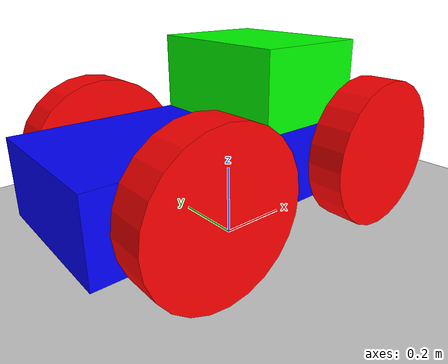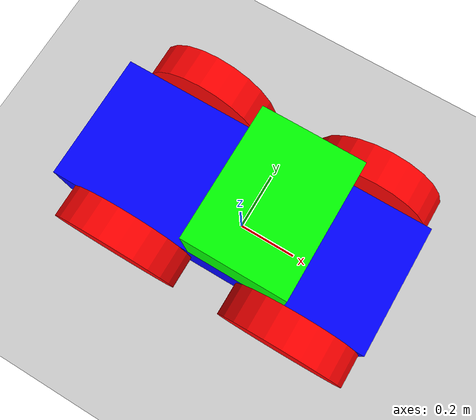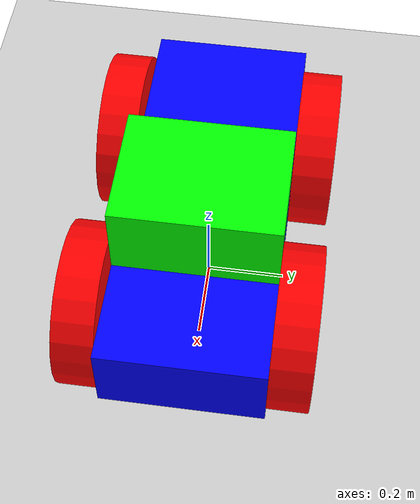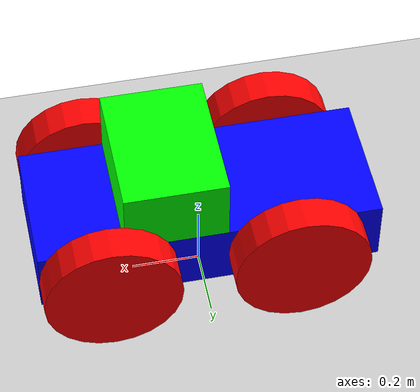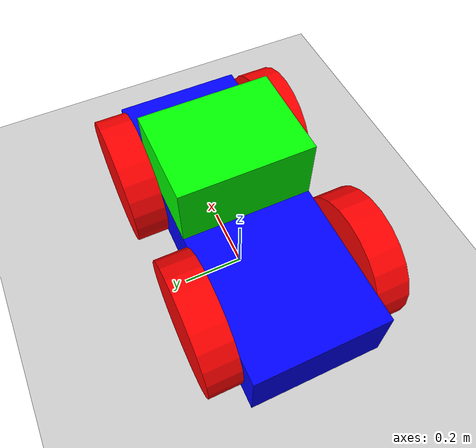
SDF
<?xml version="1.0" ?>
<sdf version="1.9">
    <world name="my_world">
        <include>
            <name>base_link</name>
            <uri>file://description/robot.sdf</uri>
        </include>
        <physics name="1ms" type="ignored">
            <max_step_size>0.001</max_step_size>
            <real_time_factor>1.0</real_time_factor>
        </physics>
        <plugin
            filename="libignition-gazebo-physics-system.so"
            name="ignition::gazebo::systems::Physics">
        </plugin>
        <plugin
            filename="libignition-gazebo-user-commands-system.so"
            name="ignition::gazebo::systems::UserCommands">
        </plugin>
        <plugin
            filename="libignition-gazebo-scene-broadcaster-system.so"
            name="ignition::gazebo::systems::SceneBroadcaster">
        </plugin>
        <plugin
            filename="libignition-gazebo-sensors-system.so"
            name="ignition::gazebo::systems::Sensors">
            <render_engine>ogre2</render_engine>
        </plugin>

        <light type="directional" name="sun">
            <cast_shadows>true</cast_shadows>
            <pose>0 0 10 0 0 0</pose>
            <diffuse>0.8 0.8 0.8 1</diffuse>
            <specular>0.2 0.2 0.2 1</specular>
            <attenuation>
                <range>1000</range>
                <constant>0.9</constant>
                <linear>0.01</linear>
                <quadratic>0.001</quadratic>
            </attenuation>
            <direction>-0.5 0.1 -0.9</direction>
        </light>

        <model name="ground_plane">
            <static>true</static>
            <link name="link">
                <collision name="collision">
                <geometry>
                    <plane>
                    <normal>0 0 1</normal>
                    </plane>
                </geometry>
                </collision>
                <visual name="visual">
                <geometry>
                    <plane>
                    <normal>0 0 1</normal>
                    <size>100 100</size>
                    </plane>
                </geometry>
                <material>
                    <ambient>0.8 0.8 0.8 1</ambient>
                    <diffuse>0.8 0.8 0.8 1</diffuse>
                    <specular>0.8 0.8 0.8 1</specular>
                </material>
                </visual>
            </link>
            <!-- Moving Forward-->
            <plugin filename="libignition-gazebo-triggered-publisher-system.so"
            name="ignition::gazebo::systems::TriggeredPublisher">
                <input type="ignition.msgs.Int32" topic="/keyboard/keypress">
                    <match field="data">16777235</match>
                </input>
                <output type="ignition.msgs.Twist" topic="/cmd_vel">
                    linear: {x: 0.5}, angular: {z: 0.0}
                </output>
            </plugin>

            <!-- Stop-->
            <plugin filename="libignition-gazebo-triggered-publisher-system.so"
            name="ignition::gazebo::systems::TriggeredPublisher">
                <input type="ignition.msgs.Int32" topic="/keyboard/keypress">
                    <match field="data">16777216</match>
                </input>
                <output type="ignition.msgs.Twist" topic="/cmd_vel">
                    linear: {x: 0.0}, angular: {z: 0.0}
                </output>
            </plugin>

            <!-- Left -->
            <plugin filename="libignition-gazebo-triggered-publisher-system.so"
            name="ignition::gazebo::systems::TriggeredPublisher">
                <input type="ignition.msgs.Int32" topic="/keyboard/keypress">
                    <match field="data">16777234</match>
                </input>
                <output type="ignition.msgs.Twist" topic="/cmd_vel">
                    linear: {x: 0.0}, angular: {z: 0.5}
                </output>
            </plugin>

            <!-- Right -->
            <plugin filename="libignition-gazebo-triggered-publisher-system.so"
            name="ignition::gazebo::systems::TriggeredPublisher">
                <input type="ignition.msgs.Int32" topic="/keyboard/keypress">
                    <match field="data">16777236</match>
                </input>
                <output type="ignition.msgs.Twist" topic="/cmd_vel">
                    linear: {x: 0.0}, angular: {z: -0.5}
                </output>
            </plugin>

            <!-- back -->
            <plugin filename="libignition-gazebo-triggered-publisher-system.so"
            name="ignition::gazebo::systems::TriggeredPublisher">
                <input type="ignition.msgs.Int32" topic="/keyboard/keypress">
                    <match field="data">16777237</match>
                </input>
                <output type="ignition.msgs.Twist" topic="/cmd_vel">
                    linear: {x: -0.5}, angular: {z: 0.0}
                </output>
            </plugin>
        </model>
    </world>
</sdf>

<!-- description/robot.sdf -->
<sdf version='1.9'>
  <model name='robot'>
    <link name='base_link'>
      <inertial>
        <pose>0.05 0 0.3 0 0 0</pose>
        <mass>1</mass>
        <inertia>
          <ixx>0.026666666666666661</ixx>
          <ixy>0</ixy>
          <ixz>-0.005000000000000001</ixz>
          <iyy>0.061249999999999999</iyy>
          <iyz>0</iyz>
          <izz>0.061249999999999999</izz>
        </inertia>
      </inertial>
      <collision name='base_link_fixed_joint_lump__chassis_collision'>
        <pose>0 0 0.2 0 0 0</pose>
        <geometry>
          <box>
            <size>1 0.4 0.2</size>
          </box>
        </geometry>
      </collision>
      <collision name='base_link_fixed_joint_lump__robo_hub_collision_1'>
        <pose>0.1 0 0.4 0 0 0</pose>
        <geometry>
          <box>
            <size>0.3 0.4 0.2</size>
          </box>
        </geometry>
      </collision>
      <visual name='base_link_fixed_joint_lump__chassis_visual'>
        <pose>0 0 0.2 0 0 0</pose>
        <geometry>
          <box>
            <size>1 0.4 0.2</size>
          </box>
        </geometry>
        <material>
          <diffuse>0 0 1 1</diffuse>
          <ambient>0 0 1 1</ambient>
        </material>
      </visual>
      <visual name='base_link_fixed_joint_lump__camera_link_visual_1'>
        <pose>0.305 0 0.08 0 0 0</pose>
        <geometry>
          <box>
            <size>0.01 0.03 0.03</size>
          </box>
        </geometry>
        <material>
          <diffuse>1 0 0 1</diffuse>
          <ambient>1 0 0 1</ambient>
        </material>
      </visual>
      <visual name='base_link_fixed_joint_lump__robo_hub_visual_2'>
        <pose>0.1 0 0.4 0 0 0</pose>
        <geometry>
          <box>
            <size>0.3 0.4 0.2</size>
          </box>
        </geometry>
        <material>
          <diffuse>0 1 0 1</diffuse>
          <ambient>0 1 0 1</ambient>
        </material>
      </visual>
      <sensor name='camera' type='camera'>
        <camera>
          <horizontal_fov>1.089</horizontal_fov>
          <image>
            <format>R8G8B8</format>
            <width>640</width>
            <height>480</height>
          </image>
          <clip>
            <near>0.050000000000000003</near>
            <far>8</far>
          </clip>
        </camera>
        <always_on>true</always_on>
        <update_rate>30</update_rate>
        <visualize>true</visualize>
        <topic>camera/image_raw</topic>
        <pose>0.305 0 0.08 0 -0 0</pose>
      </sensor>
    </link>
    <joint name='left_wheel_joint' type='revolute'>
      <pose relative_to='base_link'>0.3 0.25 0.2 -1.570796326794896 0 0</pose>
      <parent>base_link</parent>
      <child>left_wheel</child>
      <axis>
        <xyz>0 0 1</xyz>
        <limit>
          <lower>-10000000000000000</lower>
          <upper>10000000000000000</upper>
        </limit>
        <dynamics>
          <spring_reference>0</spring_reference>
          <spring_stiffness>0</spring_stiffness>
        </dynamics>
      </axis>
    </joint>
    <link name='left_wheel'>
      <pose relative_to='left_wheel_joint'>0 0 0 0 0 0</pose>
      <inertial>
        <pose>0 0 0 0 0 0</pose>
        <mass>0.10000000000000001</mass>
        <inertia>
          <ixx>0.0010833333333333339</ixx>
          <ixy>0</ixy>
          <ixz>0</ixz>
          <iyy>0.0010833333333333339</iyy>
          <iyz>0</iyz>
          <izz>0.002</izz>
        </inertia>
      </inertial>
      <collision name='left_wheel_collision'>
        <pose>0 0 0 0 0 0</pose>
        <geometry>
          <cylinder>
            <length>0.10000000000000001</length>
            <radius>0.20000000000000001</radius>
          </cylinder>
        </geometry>
      </collision>
      <visual name='left_wheel_visual'>
        <pose>0 0 0 0 0 0</pose>
        <geometry>
          <cylinder>
            <length>0.10000000000000001</length>
            <radius>0.20000000000000001</radius>
          </cylinder>
        </geometry>
        <material>
          <diffuse>1 0 0 1</diffuse>
          <ambient>1 0 0 1</ambient>
        </material>
      </visual>
    </link>
    <joint name='left_wheel_joint1' type='revolute'>
      <pose relative_to='base_link'>-0.25 0.25 0.2 -1.570796326794896 0 0</pose>
      <parent>base_link</parent>
      <child>left_wheel1</child>
      <axis>
        <xyz>0 0 1</xyz>
        <limit>
          <lower>-10000000000000000</lower>
          <upper>10000000000000000</upper>
        </limit>
        <dynamics>
          <spring_reference>0</spring_reference>
          <spring_stiffness>0</spring_stiffness>
        </dynamics>
      </axis>
    </joint>
    <link name='left_wheel1'>
      <pose relative_to='left_wheel_joint1'>0 0 0 0 0 0</pose>
      <inertial>
        <pose>0 0 0 0 0 0</pose>
        <mass>0.10000000000000001</mass>
        <inertia>
          <ixx>0.0010833333333333339</ixx>
          <ixy>0</ixy>
          <ixz>0</ixz>
          <iyy>0.0010833333333333339</iyy>
          <iyz>0</iyz>
          <izz>0.002</izz>
        </inertia>
      </inertial>
      <collision name='left_wheel1_collision'>
        <pose>0 0 0 0 0 0</pose>
        <geometry>
          <cylinder>
            <length>0.10000000000000001</length>
            <radius>0.20000000000000001</radius>
          </cylinder>
        </geometry>
      </collision>
      <visual name='left_wheel1_visual'>
        <pose>0 0 0 0 0 0</pose>
        <geometry>
          <cylinder>
            <length>0.10000000000000001</length>
            <radius>0.20000000000000001</radius>
          </cylinder>
        </geometry>
        <material>
          <diffuse>1 0 0 1</diffuse>
          <ambient>1 0 0 1</ambient>
        </material>
      </visual>
    </link>
    <joint name='right_wheel_joint' type='revolute'>
      <pose relative_to='base_link'>0.3 -0.25 0.2 1.570796326794896 0 0</pose>
      <parent>base_link</parent>
      <child>right_wheel</child>
      <axis>
        <xyz>0 0 -1</xyz>
        <limit>
          <lower>-10000000000000000</lower>
          <upper>10000000000000000</upper>
        </limit>
        <dynamics>
          <spring_reference>0</spring_reference>
          <spring_stiffness>0</spring_stiffness>
        </dynamics>
      </axis>
    </joint>
    <link name='right_wheel'>
      <pose relative_to='right_wheel_joint'>0 0 0 0 0 0</pose>
      <inertial>
        <pose>0 0 0 0 0 0</pose>
        <mass>0.10000000000000001</mass>
        <inertia>
          <ixx>0.0010833333333333339</ixx>
          <ixy>0</ixy>
          <ixz>0</ixz>
          <iyy>0.0010833333333333339</iyy>
          <iyz>0</iyz>
          <izz>0.002</izz>
        </inertia>
      </inertial>
      <collision name='right_wheel_collision'>
        <pose>0 0 0 0 0 0</pose>
        <geometry>
          <cylinder>
            <length>0.10000000000000001</length>
            <radius>0.20000000000000001</radius>
          </cylinder>
        </geometry>
      </collision>
      <visual name='right_wheel_visual'>
        <pose>0 0 0 0 0 0</pose>
        <geometry>
          <cylinder>
            <length>0.10000000000000001</length>
            <radius>0.20000000000000001</radius>
          </cylinder>
        </geometry>
        <material>
          <diffuse>1 0 0 1</diffuse>
          <ambient>1 0 0 1</ambient>
        </material>
      </visual>
    </link>
    <joint name='right_wheel_joint1' type='revolute'>
      <pose relative_to='base_link'>-0.25 -0.25 0.2 1.570796326794896 0 0</pose>
      <parent>base_link</parent>
      <child>right_wheel1</child>
      <axis>
        <xyz>0 0 -1</xyz>
        <limit>
          <lower>-10000000000000000</lower>
          <upper>10000000000000000</upper>
        </limit>
        <dynamics>
          <spring_reference>0</spring_reference>
          <spring_stiffness>0</spring_stiffness>
        </dynamics>
      </axis>
    </joint>
    <link name='right_wheel1'>
      <pose relative_to='right_wheel_joint1'>0 0 0 0 0 0</pose>
      <inertial>
        <pose>0 0 0 0 0 0</pose>
        <mass>0.10000000000000001</mass>
        <inertia>
          <ixx>0.0010833333333333339</ixx>
          <ixy>0</ixy>
          <ixz>0</ixz>
          <iyy>0.0010833333333333339</iyy>
          <iyz>0</iyz>
          <izz>0.002</izz>
        </inertia>
      </inertial>
      <collision name='right_wheel1_collision'>
        <pose>0 0 0 0 0 0</pose>
        <geometry>
          <cylinder>
            <length>0.10000000000000001</length>
            <radius>0.20000000000000001</radius>
          </cylinder>
        </geometry>
      </collision>
      <visual name='right_wheel1_visual'>
        <pose>0 0 0 0 0 0</pose>
        <geometry>
          <cylinder>
            <length>0.10000000000000001</length>
            <radius>0.20000000000000001</radius>
          </cylinder>
        </geometry>
        <material>
          <diffuse>1 0 0 1</diffuse>
          <ambient>1 0 0 1</ambient>
        </material>
      </visual>
    </link>
    <pose>0 0 0.05 0 0 0</pose>
    <plugin name='ignition::gazebo::systems::DiffDrive' filename='libignition-gazebo-diff-drive-system.so'>
      <left_joint>left_wheel_joint</left_joint>
      <right_joint>right_wheel_joint</right_joint>
      <wheel_separation>0.3</wheel_separation>
      <wheel_radius>0.05</wheel_radius>
      <odom_publish_frequency>1</odom_publish_frequency>
      <topic>cmd_vel</topic>
    </plugin>
    <plugin name='ignition::gazebo::systems::JointStatePublisher' filename='libignition-gazebo-joint-state-publisher-system'/>
    <plugin name='ignition::gazebo::systems::OdometryPublisher' filename='libignition-gazebo-odometry-publisher-system'>
      <odom_frame>world</odom_frame>
      <robot_base_frame>base_link</robot_base_frame>
    </plugin>
    <frame name='camera_optical_joint' attached_to='camera_link'>
      <pose>0 0 0 -1.5708 -0 -1.5708</pose>
    </frame>
    <frame name='camera_link_optical' attached_to='camera_optical_joint'/>
    <frame name='camera_joint' attached_to='chassis'>
      <pose>0.305 0 0.08 0 -0 0</pose>
    </frame>
    <frame name='camera_link' attached_to='camera_joint'/>
    <frame name='chassis_joint' attached_to='base_link'>
      <pose>0 0 0 0 -0 0</pose>
    </frame>
    <frame name='chassis' attached_to='chassis_joint'/>
    <frame name='robo_hub_joint' attached_to='base_link'>
      <pose>0 0 0 0 -0 0</pose>
    </frame>
    <frame name='robo_hub' attached_to='robo_hub_joint'/>
  </model>
</sdf>
